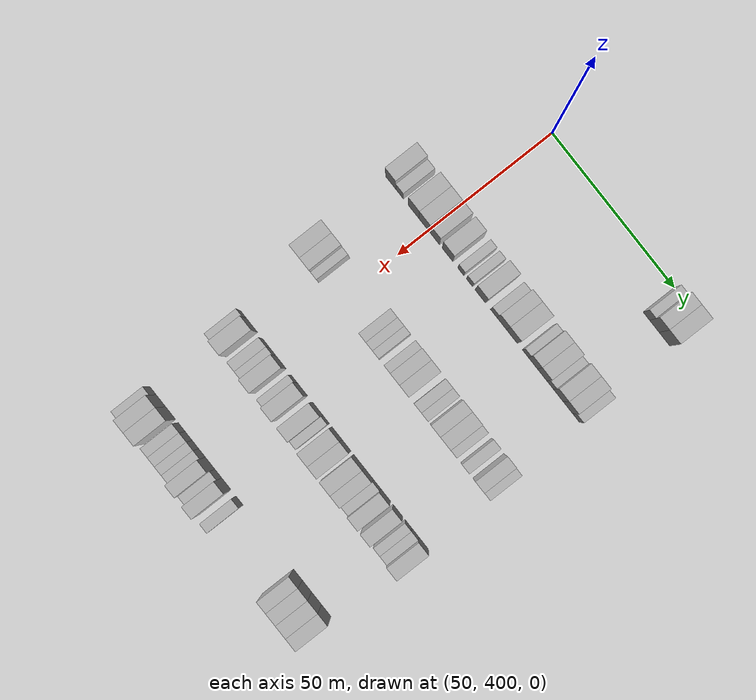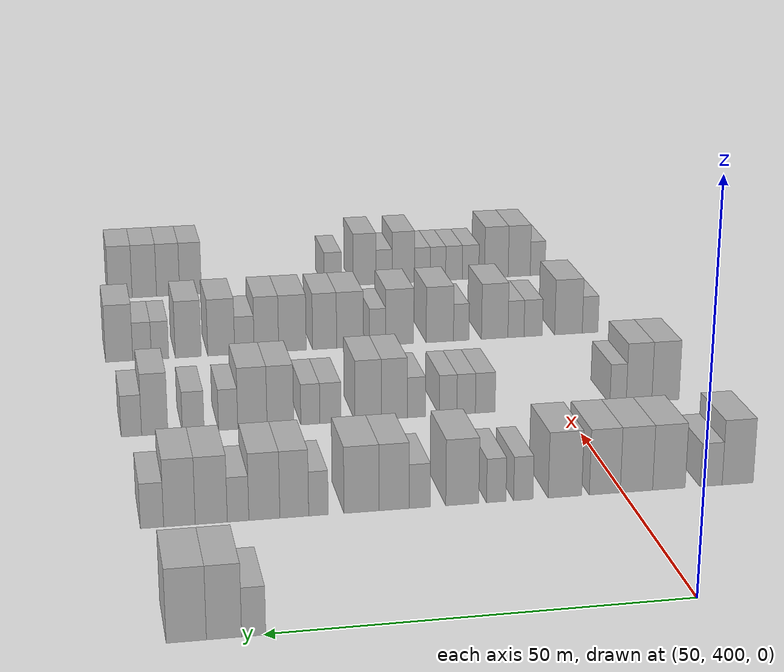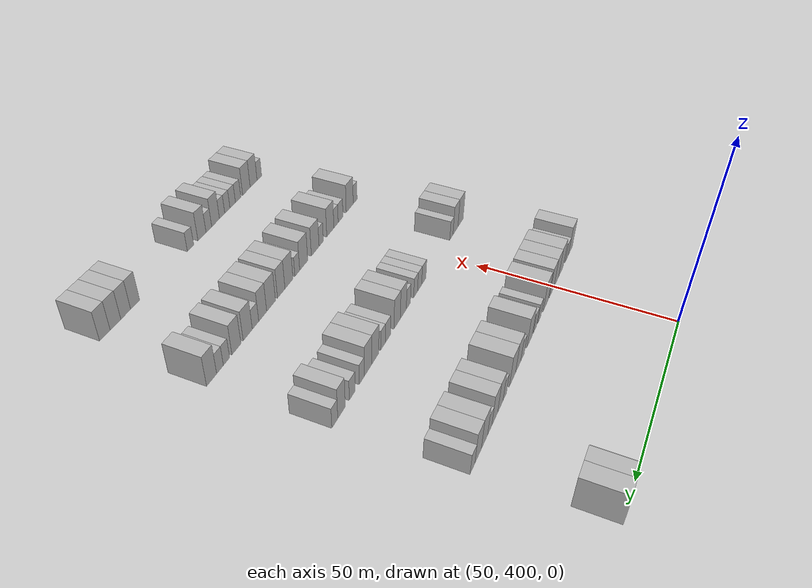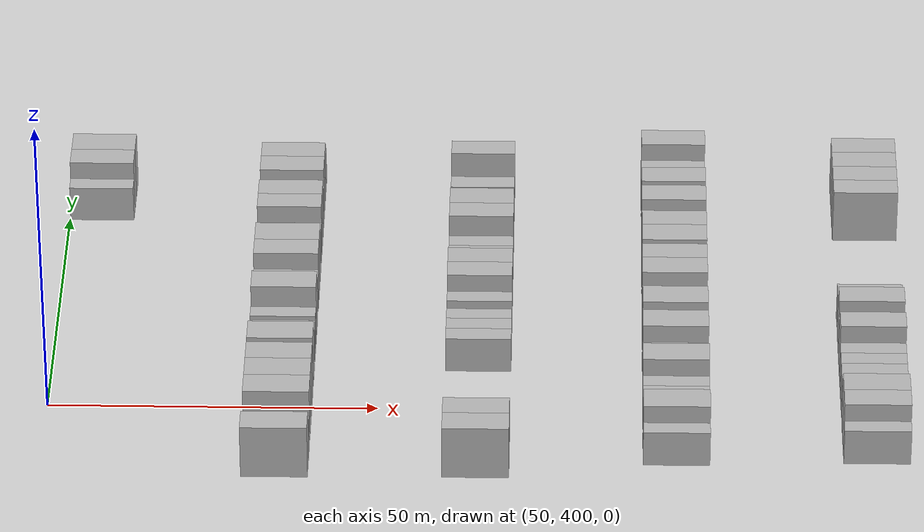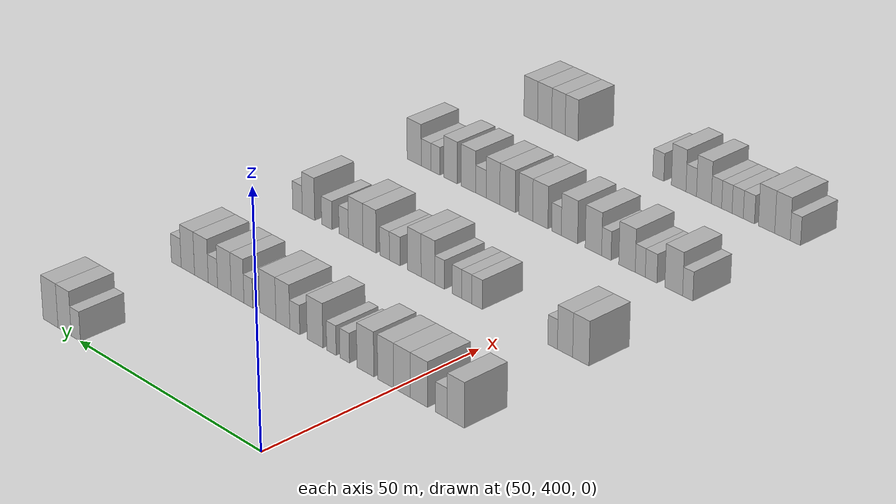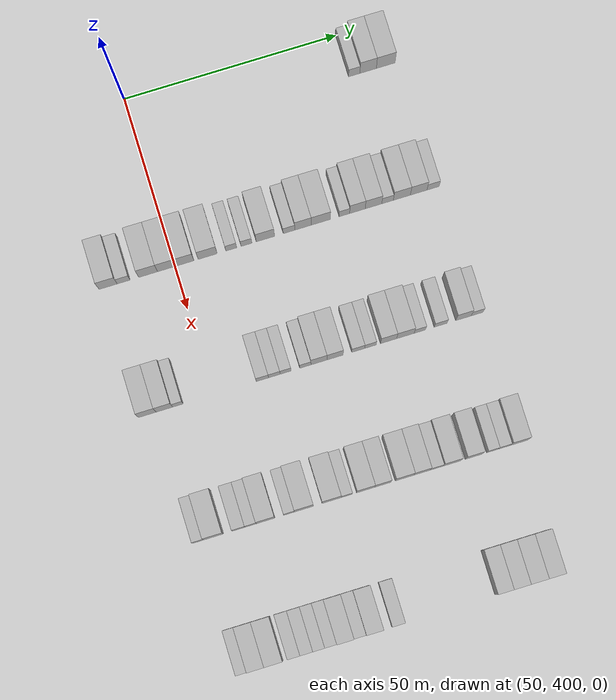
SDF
<sdf version="1.6">
 <world name="default">
  <model name="building_456">
   <static>1</static>
   <pose>55.0000 451.1384 0 0.000000 0.000000 0.000000</pose>
   <link name="link">
    <pose>0 0 3.00 0 0 0</pose>
    <collision name="collision"><geometry><box><size>10.0000 2.6718 6.0000</size></box></geometry></collision>
    <visual name="visual">
     <cast_shadows>0</cast_shadows>
     <geometry><box><size>10.0000 2.6718 6.0000</size></box></geometry>
     <material>
      <script>
       <uri>model://HANNAS_wall/materials/scripts</uri>
       <uri>model://HANNAS_wall/materials/textures</uri>
       <name>vrc/HANNAS_wall</name>
      </script>
     </material>
    </visual>
   </link>
  </model>
  <model name="building_457">
   <static>1</static>
   <pose>55.0000 454.4174 0 0.000000 0.000000 0.000000</pose>
   <link name="link">
    <pose>0 0 4.50 0 0 0</pose>
    <collision name="collision"><geometry><box><size>10.0000 3.8862 9.0000</size></box></geometry></collision>
    <visual name="visual">
     <cast_shadows>0</cast_shadows>
     <geometry><box><size>10.0000 3.8862 9.0000</size></box></geometry>
     <material>
      <script>
       <uri>model://HANNAS_wall/materials/scripts</uri>
       <uri>model://HANNAS_wall/materials/textures</uri>
       <name>vrc/HANNAS_wall</name>
      </script>
     </material>
    </visual>
   </link>
  </model>
  <model name="building_458">
   <static>1</static>
   <pose>55.0000 458.5703 0 0.000000 0.000000 0.000000</pose>
   <link name="link">
    <pose>0 0 4.50 0 0 0</pose>
    <collision name="collision"><geometry><box><size>10.0000 4.4196 9.0000</size></box></geometry></collision>
    <visual name="visual">
     <cast_shadows>0</cast_shadows>
     <geometry><box><size>10.0000 4.4196 9.0000</size></box></geometry>
     <material>
      <script>
       <uri>model://HANNAS_wall/materials/scripts</uri>
       <uri>model://HANNAS_wall/materials/textures</uri>
       <name>vrc/HANNAS_wall</name>
      </script>
     </material>
    </visual>
   </link>
  </model>
  <model name="building_674">
   <static>1</static>
   <pose>85.0000 384.5700 0 0.000000 0.000000 0.000000</pose>
   <link name="link">
    <pose>0 0 4.50 0 0 0</pose>
    <collision name="collision"><geometry><box><size>10.0000 4.2177 9.0000</size></box></geometry></collision>
    <visual name="visual">
     <cast_shadows>0</cast_shadows>
     <geometry><box><size>10.0000 4.2177 9.0000</size></box></geometry>
     <material>
      <script>
       <uri>model://HANNAS_wall/materials/scripts</uri>
       <uri>model://HANNAS_wall/materials/textures</uri>
       <name>vrc/HANNAS_wall</name>
      </script>
     </material>
    </visual>
   </link>
  </model>
  <model name="building_675">
   <static>1</static>
   <pose>85.0000 388.1701 0 0.000000 0.000000 0.000000</pose>
   <link name="link">
    <pose>0 0 3.00 0 0 0</pose>
    <collision name="collision"><geometry><box><size>10.0000 2.9825 6.0000</size></box></geometry></collision>
    <visual name="visual">
     <cast_shadows>0</cast_shadows>
     <geometry><box><size>10.0000 2.9825 6.0000</size></box></geometry>
     <material>
      <script>
       <uri>model://HANNAS_wall/materials/scripts</uri>
       <uri>model://HANNAS_wall/materials/textures</uri>
       <name>vrc/HANNAS_wall</name>
      </script>
     </material>
    </visual>
   </link>
  </model>
  <model name="building_676">
   <static>1</static>
   <pose>85.0000 393.8503 0 0.000000 0.000000 0.000000</pose>
   <link name="link">
    <pose>0 0 4.50 0 0 0</pose>
    <collision name="collision"><geometry><box><size>10.0000 4.3780 9.0000</size></box></geometry></collision>
    <visual name="visual">
     <cast_shadows>0</cast_shadows>
     <geometry><box><size>10.0000 4.3780 9.0000</size></box></geometry>
     <material>
      <script>
       <uri>model://HANNAS_wall/materials/scripts</uri>
       <uri>model://HANNAS_wall/materials/textures</uri>
       <name>vrc/HANNAS_wall</name>
      </script>
     </material>
    </visual>
   </link>
  </model>
  <model name="building_677">
   <static>1</static>
   <pose>85.0000 398.2000 0 0.000000 0.000000 0.000000</pose>
   <link name="link">
    <pose>0 0 4.50 0 0 0</pose>
    <collision name="collision"><geometry><box><size>10.0000 4.3214 9.0000</size></box></geometry></collision>
    <visual name="visual">
     <cast_shadows>0</cast_shadows>
     <geometry><box><size>10.0000 4.3214 9.0000</size></box></geometry>
     <material>
      <script>
       <uri>model://HANNAS_wall/materials/scripts</uri>
       <uri>model://HANNAS_wall/materials/textures</uri>
       <name>vrc/HANNAS_wall</name>
      </script>
     </material>
    </visual>
   </link>
  </model>
  <model name="building_678">
   <static>1</static>
   <pose>85.0000 402.4198 0 0.000000 0.000000 0.000000</pose>
   <link name="link">
    <pose>0 0 4.50 0 0 0</pose>
    <collision name="collision"><geometry><box><size>10.0000 4.1180 9.0000</size></box></geometry></collision>
    <visual name="visual">
     <cast_shadows>0</cast_shadows>
     <geometry><box><size>10.0000 4.1180 9.0000</size></box></geometry>
     <material>
      <script>
       <uri>model://HANNAS_wall/materials/scripts</uri>
       <uri>model://HANNAS_wall/materials/textures</uri>
       <name>vrc/HANNAS_wall</name>
      </script>
     </material>
    </visual>
   </link>
  </model>
  <model name="building_679">
   <static>1</static>
   <pose>85.0000 407.6911 0 0.000000 0.000000 0.000000</pose>
   <link name="link">
    <pose>0 0 4.50 0 0 0</pose>
    <collision name="collision"><geometry><box><size>10.0000 4.4246 9.0000</size></box></geometry></collision>
    <visual name="visual">
     <cast_shadows>0</cast_shadows>
     <geometry><box><size>10.0000 4.4246 9.0000</size></box></geometry>
     <material>
      <script>
       <uri>model://HANNAS_wall/materials/scripts</uri>
       <uri>model://HANNAS_wall/materials/textures</uri>
       <name>vrc/HANNAS_wall</name>
      </script>
     </material>
    </visual>
   </link>
  </model>
  <model name="building_680">
   <static>1</static>
   <pose>85.0000 413.1718 0 0.000000 0.000000 0.000000</pose>
   <link name="link">
    <pose>0 0 3.00 0 0 0</pose>
    <collision name="collision"><geometry><box><size>10.0000 2.5369 6.0000</size></box></geometry></collision>
    <visual name="visual">
     <cast_shadows>0</cast_shadows>
     <geometry><box><size>10.0000 2.5369 6.0000</size></box></geometry>
     <material>
      <script>
       <uri>model://HANNAS_wall/materials/scripts</uri>
       <uri>model://HANNAS_wall/materials/textures</uri>
       <name>vrc/HANNAS_wall</name>
      </script>
     </material>
    </visual>
   </link>
  </model>
  <model name="building_681">
   <static>1</static>
   <pose>85.0000 416.7112 0 0.000000 0.000000 0.000000</pose>
   <link name="link">
    <pose>0 0 3.00 0 0 0</pose>
    <collision name="collision"><geometry><box><size>10.0000 2.5418 6.0000</size></box></geometry></collision>
    <visual name="visual">
     <cast_shadows>0</cast_shadows>
     <geometry><box><size>10.0000 2.5418 6.0000</size></box></geometry>
     <material>
      <script>
       <uri>model://HANNAS_wall/materials/scripts</uri>
       <uri>model://HANNAS_wall/materials/textures</uri>
       <name>vrc/HANNAS_wall</name>
      </script>
     </material>
    </visual>
   </link>
  </model>
  <model name="building_682">
   <static>1</static>
   <pose>85.0000 421.1223 0 0.000000 0.000000 0.000000</pose>
   <link name="link">
    <pose>0 0 4.50 0 0 0</pose>
    <collision name="collision"><geometry><box><size>10.0000 4.2804 9.0000</size></box></geometry></collision>
    <visual name="visual">
     <cast_shadows>0</cast_shadows>
     <geometry><box><size>10.0000 4.2804 9.0000</size></box></geometry>
     <material>
      <script>
       <uri>model://HANNAS_wall/materials/scripts</uri>
       <uri>model://HANNAS_wall/materials/textures</uri>
       <name>vrc/HANNAS_wall</name>
      </script>
     </material>
    </visual>
   </link>
  </model>
  <model name="building_683">
   <static>1</static>
   <pose>85.0000 426.6259 0 0.000000 0.000000 0.000000</pose>
   <link name="link">
    <pose>0 0 3.00 0 0 0</pose>
    <collision name="collision"><geometry><box><size>10.0000 2.7268 6.0000</size></box></geometry></collision>
    <visual name="visual">
     <cast_shadows>0</cast_shadows>
     <geometry><box><size>10.0000 2.7268 6.0000</size></box></geometry>
     <material>
      <script>
       <uri>model://HANNAS_wall/materials/scripts</uri>
       <uri>model://HANNAS_wall/materials/textures</uri>
       <name>vrc/HANNAS_wall</name>
      </script>
     </material>
    </visual>
   </link>
  </model>
  <model name="building_684">
   <static>1</static>
   <pose>85.0000 429.9110 0 0.000000 0.000000 0.000000</pose>
   <link name="link">
    <pose>0 0 4.50 0 0 0</pose>
    <collision name="collision"><geometry><box><size>10.0000 3.8433 9.0000</size></box></geometry></collision>
    <visual name="visual">
     <cast_shadows>0</cast_shadows>
     <geometry><box><size>10.0000 3.8433 9.0000</size></box></geometry>
     <material>
      <script>
       <uri>model://HANNAS_wall/materials/scripts</uri>
       <uri>model://HANNAS_wall/materials/textures</uri>
       <name>vrc/HANNAS_wall</name>
      </script>
     </material>
    </visual>
   </link>
  </model>
  <model name="building_685">
   <static>1</static>
   <pose>85.0000 434.0690 0 0.000000 0.000000 0.000000</pose>
   <link name="link">
    <pose>0 0 4.50 0 0 0</pose>
    <collision name="collision"><geometry><box><size>10.0000 4.4727 9.0000</size></box></geometry></collision>
    <visual name="visual">
     <cast_shadows>0</cast_shadows>
     <geometry><box><size>10.0000 4.4727 9.0000</size></box></geometry>
     <material>
      <script>
       <uri>model://HANNAS_wall/materials/scripts</uri>
       <uri>model://HANNAS_wall/materials/textures</uri>
       <name>vrc/HANNAS_wall</name>
      </script>
     </material>
    </visual>
   </link>
  </model>
  <model name="building_686">
   <static>1</static>
   <pose>85.0000 439.5410 0 0.000000 0.000000 0.000000</pose>
   <link name="link">
    <pose>0 0 3.00 0 0 0</pose>
    <collision name="collision"><geometry><box><size>10.0000 2.4714 6.0000</size></box></geometry></collision>
    <visual name="visual">
     <cast_shadows>0</cast_shadows>
     <geometry><box><size>10.0000 2.4714 6.0000</size></box></geometry>
     <material>
      <script>
       <uri>model://HANNAS_wall/materials/scripts</uri>
       <uri>model://HANNAS_wall/materials/textures</uri>
       <name>vrc/HANNAS_wall</name>
      </script>
     </material>
    </visual>
   </link>
  </model>
  <model name="building_687">
   <static>1</static>
   <pose>85.0000 442.5926 0 0.000000 0.000000 0.000000</pose>
   <link name="link">
    <pose>0 0 4.50 0 0 0</pose>
    <collision name="collision"><geometry><box><size>10.0000 3.6317 9.0000</size></box></geometry></collision>
    <visual name="visual">
     <cast_shadows>0</cast_shadows>
     <geometry><box><size>10.0000 3.6317 9.0000</size></box></geometry>
     <material>
      <script>
       <uri>model://HANNAS_wall/materials/scripts</uri>
       <uri>model://HANNAS_wall/materials/textures</uri>
       <name>vrc/HANNAS_wall</name>
      </script>
     </material>
    </visual>
   </link>
  </model>
  <model name="building_688">
   <static>1</static>
   <pose>85.0000 446.3511 0 0.000000 0.000000 0.000000</pose>
   <link name="link">
    <pose>0 0 4.50 0 0 0</pose>
    <collision name="collision"><geometry><box><size>10.0000 3.8855 9.0000</size></box></geometry></collision>
    <visual name="visual">
     <cast_shadows>0</cast_shadows>
     <geometry><box><size>10.0000 3.8855 9.0000</size></box></geometry>
     <material>
      <script>
       <uri>model://HANNAS_wall/materials/scripts</uri>
       <uri>model://HANNAS_wall/materials/textures</uri>
       <name>vrc/HANNAS_wall</name>
      </script>
     </material>
    </visual>
   </link>
  </model>
  <model name="building_689">
   <static>1</static>
   <pose>85.0000 449.6389 0 0.000000 0.000000 0.000000</pose>
   <link name="link">
    <pose>0 0 3.00 0 0 0</pose>
    <collision name="collision"><geometry><box><size>10.0000 2.6900 6.0000</size></box></geometry></collision>
    <visual name="visual">
     <cast_shadows>0</cast_shadows>
     <geometry><box><size>10.0000 2.6900 6.0000</size></box></geometry>
     <material>
      <script>
       <uri>model://HANNAS_wall/materials/scripts</uri>
       <uri>model://HANNAS_wall/materials/textures</uri>
       <name>vrc/HANNAS_wall</name>
      </script>
     </material>
    </visual>
   </link>
  </model>
  <model name="building_690">
   <static>1</static>
   <pose>85.0000 452.9744 0 0.000000 0.000000 0.000000</pose>
   <link name="link">
    <pose>0 0 4.50 0 0 0</pose>
    <collision name="collision"><geometry><box><size>10.0000 3.9811 9.0000</size></box></geometry></collision>
    <visual name="visual">
     <cast_shadows>0</cast_shadows>
     <geometry><box><size>10.0000 3.9811 9.0000</size></box></geometry>
     <material>
      <script>
       <uri>model://HANNAS_wall/materials/scripts</uri>
       <uri>model://HANNAS_wall/materials/textures</uri>
       <name>vrc/HANNAS_wall</name>
      </script>
     </material>
    </visual>
   </link>
  </model>
  <model name="building_691">
   <static>1</static>
   <pose>85.0000 456.9182 0 0.000000 0.000000 0.000000</pose>
   <link name="link">
    <pose>0 0 4.50 0 0 0</pose>
    <collision name="collision"><geometry><box><size>10.0000 3.9064 9.0000</size></box></geometry></collision>
    <visual name="visual">
     <cast_shadows>0</cast_shadows>
     <geometry><box><size>10.0000 3.9064 9.0000</size></box></geometry>
     <material>
      <script>
       <uri>model://HANNAS_wall/materials/scripts</uri>
       <uri>model://HANNAS_wall/materials/textures</uri>
       <name>vrc/HANNAS_wall</name>
      </script>
     </material>
    </visual>
   </link>
  </model>
  <model name="building_692">
   <static>1</static>
   <pose>85.0000 460.3089 0 0.000000 0.000000 0.000000</pose>
   <link name="link">
    <pose>0 0 3.00 0 0 0</pose>
    <collision name="collision"><geometry><box><size>10.0000 2.8749 6.0000</size></box></geometry></collision>
    <visual name="visual">
     <cast_shadows>0</cast_shadows>
     <geometry><box><size>10.0000 2.8749 6.0000</size></box></geometry>
     <material>
      <script>
       <uri>model://HANNAS_wall/materials/scripts</uri>
       <uri>model://HANNAS_wall/materials/textures</uri>
       <name>vrc/HANNAS_wall</name>
      </script>
     </material>
    </visual>
   </link>
  </model>
  <model name="building_905">
   <static>1</static>
   <pose>115.0000 384.7824 0 0.000000 0.000000 0.000000</pose>
   <link name="link">
    <pose>0 0 4.50 0 0 0</pose>
    <collision name="collision"><geometry><box><size>10.0000 4.0681 9.0000</size></box></geometry></collision>
    <visual name="visual">
     <cast_shadows>0</cast_shadows>
     <geometry><box><size>10.0000 4.0681 9.0000</size></box></geometry>
     <material>
      <script>
       <uri>model://HANNAS_wall/materials/scripts</uri>
       <uri>model://HANNAS_wall/materials/textures</uri>
       <name>vrc/HANNAS_wall</name>
      </script>
     </material>
    </visual>
   </link>
  </model>
  <model name="building_906">
   <static>1</static>
   <pose>115.0000 388.7227 0 0.000000 0.000000 0.000000</pose>
   <link name="link">
    <pose>0 0 4.50 0 0 0</pose>
    <collision name="collision"><geometry><box><size>10.0000 3.8125 9.0000</size></box></geometry></collision>
    <visual name="visual">
     <cast_shadows>0</cast_shadows>
     <geometry><box><size>10.0000 3.8125 9.0000</size></box></geometry>
     <material>
      <script>
       <uri>model://HANNAS_wall/materials/scripts</uri>
       <uri>model://HANNAS_wall/materials/textures</uri>
       <name>vrc/HANNAS_wall</name>
      </script>
     </material>
    </visual>
   </link>
  </model>
  <model name="building_907">
   <static>1</static>
   <pose>115.0000 391.8357 0 0.000000 0.000000 0.000000</pose>
   <link name="link">
    <pose>0 0 3.00 0 0 0</pose>
    <collision name="collision"><geometry><box><size>10.0000 2.4135 6.0000</size></box></geometry></collision>
    <visual name="visual">
     <cast_shadows>0</cast_shadows>
     <geometry><box><size>10.0000 2.4135 6.0000</size></box></geometry>
     <material>
      <script>
       <uri>model://HANNAS_wall/materials/scripts</uri>
       <uri>model://HANNAS_wall/materials/textures</uri>
       <name>vrc/HANNAS_wall</name>
      </script>
     </material>
    </visual>
   </link>
  </model>
  <model name="building_908">
   <static>1</static>
   <pose>115.0000 411.3179 0 0.000000 0.000000 0.000000</pose>
   <link name="link">
    <pose>0 0 3.00 0 0 0</pose>
    <collision name="collision"><geometry><box><size>10.0000 2.8503 6.0000</size></box></geometry></collision>
    <visual name="visual">
     <cast_shadows>0</cast_shadows>
     <geometry><box><size>10.0000 2.8503 6.0000</size></box></geometry>
     <material>
      <script>
       <uri>model://HANNAS_wall/materials/scripts</uri>
       <uri>model://HANNAS_wall/materials/textures</uri>
       <name>vrc/HANNAS_wall</name>
      </script>
     </material>
    </visual>
   </link>
  </model>
  <model name="building_909">
   <static>1</static>
   <pose>115.0000 414.0802 0 0.000000 0.000000 0.000000</pose>
   <link name="link">
    <pose>0 0 3.00 0 0 0</pose>
    <collision name="collision"><geometry><box><size>10.0000 2.6743 6.0000</size></box></geometry></collision>
    <visual name="visual">
     <cast_shadows>0</cast_shadows>
     <geometry><box><size>10.0000 2.6743 6.0000</size></box></geometry>
     <material>
      <script>
       <uri>model://HANNAS_wall/materials/scripts</uri>
       <uri>model://HANNAS_wall/materials/textures</uri>
       <name>vrc/HANNAS_wall</name>
      </script>
     </material>
    </visual>
   </link>
  </model>
  <model name="building_910">
   <static>1</static>
   <pose>115.0000 416.6771 0 0.000000 0.000000 0.000000</pose>
   <link name="link">
    <pose>0 0 3.00 0 0 0</pose>
    <collision name="collision"><geometry><box><size>10.0000 2.5195 6.0000</size></box></geometry></collision>
    <visual name="visual">
     <cast_shadows>0</cast_shadows>
     <geometry><box><size>10.0000 2.5195 6.0000</size></box></geometry>
     <material>
      <script>
       <uri>model://HANNAS_wall/materials/scripts</uri>
       <uri>model://HANNAS_wall/materials/textures</uri>
       <name>vrc/HANNAS_wall</name>
      </script>
     </material>
    </visual>
   </link>
  </model>
  <model name="building_911">
   <static>1</static>
   <pose>115.0000 421.2433 0 0.000000 0.000000 0.000000</pose>
   <link name="link">
    <pose>0 0 3.00 0 0 0</pose>
    <collision name="collision"><geometry><box><size>10.0000 2.6130 6.0000</size></box></geometry></collision>
    <visual name="visual">
     <cast_shadows>0</cast_shadows>
     <geometry><box><size>10.0000 2.6130 6.0000</size></box></geometry>
     <material>
      <script>
       <uri>model://HANNAS_wall/materials/scripts</uri>
       <uri>model://HANNAS_wall/materials/textures</uri>
       <name>vrc/HANNAS_wall</name>
      </script>
     </material>
    </visual>
   </link>
  </model>
  <model name="building_912">
   <static>1</static>
   <pose>115.0000 424.3991 0 0.000000 0.000000 0.000000</pose>
   <link name="link">
    <pose>0 0 4.50 0 0 0</pose>
    <collision name="collision"><geometry><box><size>10.0000 3.6987 9.0000</size></box></geometry></collision>
    <visual name="visual">
     <cast_shadows>0</cast_shadows>
     <geometry><box><size>10.0000 3.6987 9.0000</size></box></geometry>
     <material>
      <script>
       <uri>model://HANNAS_wall/materials/scripts</uri>
       <uri>model://HANNAS_wall/materials/textures</uri>
       <name>vrc/HANNAS_wall</name>
      </script>
     </material>
    </visual>
   </link>
  </model>
  <model name="building_913">
   <static>1</static>
   <pose>115.0000 428.1123 0 0.000000 0.000000 0.000000</pose>
   <link name="link">
    <pose>0 0 4.50 0 0 0</pose>
    <collision name="collision"><geometry><box><size>10.0000 3.7276 9.0000</size></box></geometry></collision>
    <visual name="visual">
     <cast_shadows>0</cast_shadows>
     <geometry><box><size>10.0000 3.7276 9.0000</size></box></geometry>
     <material>
      <script>
       <uri>model://HANNAS_wall/materials/scripts</uri>
       <uri>model://HANNAS_wall/materials/textures</uri>
       <name>vrc/HANNAS_wall</name>
      </script>
     </material>
    </visual>
   </link>
  </model>
  <model name="building_914">
   <static>1</static>
   <pose>115.0000 433.4682 0 0.000000 0.000000 0.000000</pose>
   <link name="link">
    <pose>0 0 3.00 0 0 0</pose>
    <collision name="collision"><geometry><box><size>10.0000 2.9843 6.0000</size></box></geometry></collision>
    <visual name="visual">
     <cast_shadows>0</cast_shadows>
     <geometry><box><size>10.0000 2.9843 6.0000</size></box></geometry>
     <material>
      <script>
       <uri>model://HANNAS_wall/materials/scripts</uri>
       <uri>model://HANNAS_wall/materials/textures</uri>
       <name>vrc/HANNAS_wall</name>
      </script>
     </material>
    </visual>
   </link>
  </model>
  <model name="building_915">
   <static>1</static>
   <pose>115.0000 436.2966 0 0.000000 0.000000 0.000000</pose>
   <link name="link">
    <pose>0 0 3.00 0 0 0</pose>
    <collision name="collision"><geometry><box><size>10.0000 2.6725 6.0000</size></box></geometry></collision>
    <visual name="visual">
     <cast_shadows>0</cast_shadows>
     <geometry><box><size>10.0000 2.6725 6.0000</size></box></geometry>
     <material>
      <script>
       <uri>model://HANNAS_wall/materials/scripts</uri>
       <uri>model://HANNAS_wall/materials/textures</uri>
       <name>vrc/HANNAS_wall</name>
      </script>
     </material>
    </visual>
   </link>
  </model>
  <model name="building_916">
   <static>1</static>
   <pose>115.0000 440.4993 0 0.000000 0.000000 0.000000</pose>
   <link name="link">
    <pose>0 0 4.50 0 0 0</pose>
    <collision name="collision"><geometry><box><size>10.0000 3.7330 9.0000</size></box></geometry></collision>
    <visual name="visual">
     <cast_shadows>0</cast_shadows>
     <geometry><box><size>10.0000 3.7330 9.0000</size></box></geometry>
     <material>
      <script>
       <uri>model://HANNAS_wall/materials/scripts</uri>
       <uri>model://HANNAS_wall/materials/textures</uri>
       <name>vrc/HANNAS_wall</name>
      </script>
     </material>
    </visual>
   </link>
  </model>
  <model name="building_917">
   <static>1</static>
   <pose>115.0000 444.4056 0 0.000000 0.000000 0.000000</pose>
   <link name="link">
    <pose>0 0 4.50 0 0 0</pose>
    <collision name="collision"><geometry><box><size>10.0000 4.0796 9.0000</size></box></geometry></collision>
    <visual name="visual">
     <cast_shadows>0</cast_shadows>
     <geometry><box><size>10.0000 4.0796 9.0000</size></box></geometry>
     <material>
      <script>
       <uri>model://HANNAS_wall/materials/scripts</uri>
       <uri>model://HANNAS_wall/materials/textures</uri>
       <name>vrc/HANNAS_wall</name>
      </script>
     </material>
    </visual>
   </link>
  </model>
  <model name="building_918">
   <static>1</static>
   <pose>115.0000 447.7815 0 0.000000 0.000000 0.000000</pose>
   <link name="link">
    <pose>0 0 3.00 0 0 0</pose>
    <collision name="collision"><geometry><box><size>10.0000 2.6723 6.0000</size></box></geometry></collision>
    <visual name="visual">
     <cast_shadows>0</cast_shadows>
     <geometry><box><size>10.0000 2.6723 6.0000</size></box></geometry>
     <material>
      <script>
       <uri>model://HANNAS_wall/materials/scripts</uri>
       <uri>model://HANNAS_wall/materials/textures</uri>
       <name>vrc/HANNAS_wall</name>
      </script>
     </material>
    </visual>
   </link>
  </model>
  <model name="building_919">
   <static>1</static>
   <pose>115.0000 452.6151 0 0.000000 0.000000 0.000000</pose>
   <link name="link">
    <pose>0 0 3.00 0 0 0</pose>
    <collision name="collision"><geometry><box><size>10.0000 2.9948 6.0000</size></box></geometry></collision>
    <visual name="visual">
     <cast_shadows>0</cast_shadows>
     <geometry><box><size>10.0000 2.9948 6.0000</size></box></geometry>
     <material>
      <script>
       <uri>model://HANNAS_wall/materials/scripts</uri>
       <uri>model://HANNAS_wall/materials/textures</uri>
       <name>vrc/HANNAS_wall</name>
      </script>
     </material>
    </visual>
   </link>
  </model>
  <model name="building_920">
   <static>1</static>
   <pose>115.0000 457.9167 0 0.000000 0.000000 0.000000</pose>
   <link name="link">
    <pose>0 0 4.50 0 0 0</pose>
    <collision name="collision"><geometry><box><size>10.0000 3.6084 9.0000</size></box></geometry></collision>
    <visual name="visual">
     <cast_shadows>0</cast_shadows>
     <geometry><box><size>10.0000 3.6084 9.0000</size></box></geometry>
     <material>
      <script>
       <uri>model://HANNAS_wall/materials/scripts</uri>
       <uri>model://HANNAS_wall/materials/textures</uri>
       <name>vrc/HANNAS_wall</name>
      </script>
     </material>
    </visual>
   </link>
  </model>
  <model name="building_921">
   <static>1</static>
   <pose>115.0000 461.1172 0 0.000000 0.000000 0.000000</pose>
   <link name="link">
    <pose>0 0 3.00 0 0 0</pose>
    <collision name="collision"><geometry><box><size>10.0000 2.7925 6.0000</size></box></geometry></collision>
    <visual name="visual">
     <cast_shadows>0</cast_shadows>
     <geometry><box><size>10.0000 2.7925 6.0000</size></box></geometry>
     <material>
      <script>
       <uri>model://HANNAS_wall/materials/scripts</uri>
       <uri>model://HANNAS_wall/materials/textures</uri>
       <name>vrc/HANNAS_wall</name>
      </script>
     </material>
    </visual>
   </link>
  </model>
  <model name="building_1125">
   <static>1</static>
   <pose>145.0000 387.5832 0 0.000000 0.000000 0.000000</pose>
   <link name="link">
    <pose>0 0 3.00 0 0 0</pose>
    <collision name="collision"><geometry><box><size>10.0000 2.5519 6.0000</size></box></geometry></collision>
    <visual name="visual">
     <cast_shadows>0</cast_shadows>
     <geometry><box><size>10.0000 2.5519 6.0000</size></box></geometry>
     <material>
      <script>
       <uri>model://HANNAS_wall/materials/scripts</uri>
       <uri>model://HANNAS_wall/materials/textures</uri>
       <name>vrc/HANNAS_wall</name>
      </script>
     </material>
    </visual>
   </link>
  </model>
  <model name="building_1126">
   <static>1</static>
   <pose>145.0000 391.0941 0 0.000000 0.000000 0.000000</pose>
   <link name="link">
    <pose>0 0 4.50 0 0 0</pose>
    <collision name="collision"><geometry><box><size>10.0000 4.4700 9.0000</size></box></geometry></collision>
    <visual name="visual">
     <cast_shadows>0</cast_shadows>
     <geometry><box><size>10.0000 4.4700 9.0000</size></box></geometry>
     <material>
      <script>
       <uri>model://HANNAS_wall/materials/scripts</uri>
       <uri>model://HANNAS_wall/materials/textures</uri>
       <name>vrc/HANNAS_wall</name>
      </script>
     </material>
    </visual>
   </link>
  </model>
  <model name="building_1127">
   <static>1</static>
   <pose>145.0000 396.8059 0 0.000000 0.000000 0.000000</pose>
   <link name="link">
    <pose>0 0 3.00 0 0 0</pose>
    <collision name="collision"><geometry><box><size>10.0000 2.9535 6.0000</size></box></geometry></collision>
    <visual name="visual">
     <cast_shadows>0</cast_shadows>
     <geometry><box><size>10.0000 2.9535 6.0000</size></box></geometry>
     <material>
      <script>
       <uri>model://HANNAS_wall/materials/scripts</uri>
       <uri>model://HANNAS_wall/materials/textures</uri>
       <name>vrc/HANNAS_wall</name>
      </script>
     </material>
    </visual>
   </link>
  </model>
  <model name="building_1128">
   <static>1</static>
   <pose>145.0000 399.5713 0 0.000000 0.000000 0.000000</pose>
   <link name="link">
    <pose>0 0 3.00 0 0 0</pose>
    <collision name="collision"><geometry><box><size>10.0000 2.5774 6.0000</size></box></geometry></collision>
    <visual name="visual">
     <cast_shadows>0</cast_shadows>
     <geometry><box><size>10.0000 2.5774 6.0000</size></box></geometry>
     <material>
      <script>
       <uri>model://HANNAS_wall/materials/scripts</uri>
       <uri>model://HANNAS_wall/materials/textures</uri>
       <name>vrc/HANNAS_wall</name>
      </script>
     </material>
    </visual>
   </link>
  </model>
  <model name="building_1129">
   <static>1</static>
   <pose>145.0000 402.9783 0 0.000000 0.000000 0.000000</pose>
   <link name="link">
    <pose>0 0 4.50 0 0 0</pose>
    <collision name="collision"><geometry><box><size>10.0000 4.2365 9.0000</size></box></geometry></collision>
    <visual name="visual">
     <cast_shadows>0</cast_shadows>
     <geometry><box><size>10.0000 4.2365 9.0000</size></box></geometry>
     <material>
      <script>
       <uri>model://HANNAS_wall/materials/scripts</uri>
       <uri>model://HANNAS_wall/materials/textures</uri>
       <name>vrc/HANNAS_wall</name>
      </script>
     </material>
    </visual>
   </link>
  </model>
  <model name="building_1130">
   <static>1</static>
   <pose>145.0000 408.3260 0 0.000000 0.000000 0.000000</pose>
   <link name="link">
    <pose>0 0 3.00 0 0 0</pose>
    <collision name="collision"><geometry><box><size>10.0000 2.4589 6.0000</size></box></geometry></collision>
    <visual name="visual">
     <cast_shadows>0</cast_shadows>
     <geometry><box><size>10.0000 2.4589 6.0000</size></box></geometry>
     <material>
      <script>
       <uri>model://HANNAS_wall/materials/scripts</uri>
       <uri>model://HANNAS_wall/materials/textures</uri>
       <name>vrc/HANNAS_wall</name>
      </script>
     </material>
    </visual>
   </link>
  </model>
  <model name="building_1131">
   <static>1</static>
   <pose>145.0000 411.7170 0 0.000000 0.000000 0.000000</pose>
   <link name="link">
    <pose>0 0 4.50 0 0 0</pose>
    <collision name="collision"><geometry><box><size>10.0000 4.3231 9.0000</size></box></geometry></collision>
    <visual name="visual">
     <cast_shadows>0</cast_shadows>
     <geometry><box><size>10.0000 4.3231 9.0000</size></box></geometry>
     <material>
      <script>
       <uri>model://HANNAS_wall/materials/scripts</uri>
       <uri>model://HANNAS_wall/materials/textures</uri>
       <name>vrc/HANNAS_wall</name>
      </script>
     </material>
    </visual>
   </link>
  </model>
  <model name="building_1132">
   <static>1</static>
   <pose>145.0000 418.0543 0 0.000000 0.000000 0.000000</pose>
   <link name="link">
    <pose>0 0 4.50 0 0 0</pose>
    <collision name="collision"><geometry><box><size>10.0000 4.3515 9.0000</size></box></geometry></collision>
    <visual name="visual">
     <cast_shadows>0</cast_shadows>
     <geometry><box><size>10.0000 4.3515 9.0000</size></box></geometry>
     <material>
      <script>
       <uri>model://HANNAS_wall/materials/scripts</uri>
       <uri>model://HANNAS_wall/materials/textures</uri>
       <name>vrc/HANNAS_wall</name>
      </script>
     </material>
    </visual>
   </link>
  </model>
  <model name="building_1133">
   <static>1</static>
   <pose>145.0000 421.5122 0 0.000000 0.000000 0.000000</pose>
   <link name="link">
    <pose>0 0 3.00 0 0 0</pose>
    <collision name="collision"><geometry><box><size>10.0000 2.5642 6.0000</size></box></geometry></collision>
    <visual name="visual">
     <cast_shadows>0</cast_shadows>
     <geometry><box><size>10.0000 2.5642 6.0000</size></box></geometry>
     <material>
      <script>
       <uri>model://HANNAS_wall/materials/scripts</uri>
       <uri>model://HANNAS_wall/materials/textures</uri>
       <name>vrc/HANNAS_wall</name>
      </script>
     </material>
    </visual>
   </link>
  </model>
  <model name="building_1134">
   <static>1</static>
   <pose>145.0000 425.8692 0 0.000000 0.000000 0.000000</pose>
   <link name="link">
    <pose>0 0 4.50 0 0 0</pose>
    <collision name="collision"><geometry><box><size>10.0000 4.1498 9.0000</size></box></geometry></collision>
    <visual name="visual">
     <cast_shadows>0</cast_shadows>
     <geometry><box><size>10.0000 4.1498 9.0000</size></box></geometry>
     <material>
      <script>
       <uri>model://HANNAS_wall/materials/scripts</uri>
       <uri>model://HANNAS_wall/materials/textures</uri>
       <name>vrc/HANNAS_wall</name>
      </script>
     </material>
    </visual>
   </link>
  </model>
  <model name="building_1135">
   <static>1</static>
   <pose>145.0000 429.8081 0 0.000000 0.000000 0.000000</pose>
   <link name="link">
    <pose>0 0 4.50 0 0 0</pose>
    <collision name="collision"><geometry><box><size>10.0000 3.7280 9.0000</size></box></geometry></collision>
    <visual name="visual">
     <cast_shadows>0</cast_shadows>
     <geometry><box><size>10.0000 3.7280 9.0000</size></box></geometry>
     <material>
      <script>
       <uri>model://HANNAS_wall/materials/scripts</uri>
       <uri>model://HANNAS_wall/materials/textures</uri>
       <name>vrc/HANNAS_wall</name>
      </script>
     </material>
    </visual>
   </link>
  </model>
  <model name="building_1136">
   <static>1</static>
   <pose>145.0000 434.8027 0 0.000000 0.000000 0.000000</pose>
   <link name="link">
    <pose>0 0 4.50 0 0 0</pose>
    <collision name="collision"><geometry><box><size>10.0000 4.2611 9.0000</size></box></geometry></collision>
    <visual name="visual">
     <cast_shadows>0</cast_shadows>
     <geometry><box><size>10.0000 4.2611 9.0000</size></box></geometry>
     <material>
      <script>
       <uri>model://HANNAS_wall/materials/scripts</uri>
       <uri>model://HANNAS_wall/materials/textures</uri>
       <name>vrc/HANNAS_wall</name>
      </script>
     </material>
    </visual>
   </link>
  </model>
  <model name="building_1137">
   <static>1</static>
   <pose>145.0000 438.8183 0 0.000000 0.000000 0.000000</pose>
   <link name="link">
    <pose>0 0 4.50 0 0 0</pose>
    <collision name="collision"><geometry><box><size>10.0000 3.7701 9.0000</size></box></geometry></collision>
    <visual name="visual">
     <cast_shadows>0</cast_shadows>
     <geometry><box><size>10.0000 3.7701 9.0000</size></box></geometry>
     <material>
      <script>
       <uri>model://HANNAS_wall/materials/scripts</uri>
       <uri>model://HANNAS_wall/materials/textures</uri>
       <name>vrc/HANNAS_wall</name>
      </script>
     </material>
    </visual>
   </link>
  </model>
  <model name="building_1138">
   <static>1</static>
   <pose>145.0000 442.1986 0 0.000000 0.000000 0.000000</pose>
   <link name="link">
    <pose>0 0 3.00 0 0 0</pose>
    <collision name="collision"><geometry><box><size>10.0000 2.9905 6.0000</size></box></geometry></collision>
    <visual name="visual">
     <cast_shadows>0</cast_shadows>
     <geometry><box><size>10.0000 2.9905 6.0000</size></box></geometry>
     <material>
      <script>
       <uri>model://HANNAS_wall/materials/scripts</uri>
       <uri>model://HANNAS_wall/materials/textures</uri>
       <name>vrc/HANNAS_wall</name>
      </script>
     </material>
    </visual>
   </link>
  </model>
  <model name="building_1139">
   <static>1</static>
   <pose>145.0000 445.7541 0 0.000000 0.000000 0.000000</pose>
   <link name="link">
    <pose>0 0 4.50 0 0 0</pose>
    <collision name="collision"><geometry><box><size>10.0000 4.1206 9.0000</size></box></geometry></collision>
    <visual name="visual">
     <cast_shadows>0</cast_shadows>
     <geometry><box><size>10.0000 4.1206 9.0000</size></box></geometry>
     <material>
      <script>
       <uri>model://HANNAS_wall/materials/scripts</uri>
       <uri>model://HANNAS_wall/materials/textures</uri>
       <name>vrc/HANNAS_wall</name>
      </script>
     </material>
    </visual>
   </link>
  </model>
  <model name="building_1140">
   <static>1</static>
   <pose>145.0000 450.7831 0 0.000000 0.000000 0.000000</pose>
   <link name="link">
    <pose>0 0 4.50 0 0 0</pose>
    <collision name="collision"><geometry><box><size>10.0000 3.9375 9.0000</size></box></geometry></collision>
    <visual name="visual">
     <cast_shadows>0</cast_shadows>
     <geometry><box><size>10.0000 3.9375 9.0000</size></box></geometry>
     <material>
      <script>
       <uri>model://HANNAS_wall/materials/scripts</uri>
       <uri>model://HANNAS_wall/materials/textures</uri>
       <name>vrc/HANNAS_wall</name>
      </script>
     </material>
    </visual>
   </link>
  </model>
  <model name="building_1141">
   <static>1</static>
   <pose>145.0000 455.0644 0 0.000000 0.000000 0.000000</pose>
   <link name="link">
    <pose>0 0 3.00 0 0 0</pose>
    <collision name="collision"><geometry><box><size>10.0000 2.6252 6.0000</size></box></geometry></collision>
    <visual name="visual">
     <cast_shadows>0</cast_shadows>
     <geometry><box><size>10.0000 2.6252 6.0000</size></box></geometry>
     <material>
      <script>
       <uri>model://HANNAS_wall/materials/scripts</uri>
       <uri>model://HANNAS_wall/materials/textures</uri>
       <name>vrc/HANNAS_wall</name>
      </script>
     </material>
    </visual>
   </link>
  </model>
  <model name="building_1142">
   <static>1</static>
   <pose>145.0000 457.7778 0 0.000000 0.000000 0.000000</pose>
   <link name="link">
    <pose>0 0 3.00 0 0 0</pose>
    <collision name="collision"><geometry><box><size>10.0000 2.8016 6.0000</size></box></geometry></collision>
    <visual name="visual">
     <cast_shadows>0</cast_shadows>
     <geometry><box><size>10.0000 2.8016 6.0000</size></box></geometry>
     <material>
      <script>
       <uri>model://HANNAS_wall/materials/scripts</uri>
       <uri>model://HANNAS_wall/materials/textures</uri>
       <name>vrc/HANNAS_wall</name>
      </script>
     </material>
    </visual>
   </link>
  </model>
  <model name="building_1143">
   <static>1</static>
   <pose>145.0000 461.2250 0 0.000000 0.000000 0.000000</pose>
   <link name="link">
    <pose>0 0 4.50 0 0 0</pose>
    <collision name="collision"><geometry><box><size>10.0000 4.0928 9.0000</size></box></geometry></collision>
    <visual name="visual">
     <cast_shadows>0</cast_shadows>
     <geometry><box><size>10.0000 4.0928 9.0000</size></box></geometry>
     <material>
      <script>
       <uri>model://HANNAS_wall/materials/scripts</uri>
       <uri>model://HANNAS_wall/materials/textures</uri>
       <name>vrc/HANNAS_wall</name>
      </script>
     </material>
    </visual>
   </link>
  </model>
  <model name="building_1358">
   <static>1</static>
   <pose>175.0000 388.4781 0 0.000000 0.000000 0.000000</pose>
   <link name="link">
    <pose>0 0 3.00 0 0 0</pose>
    <collision name="collision"><geometry><box><size>10.0000 2.6022 6.0000</size></box></geometry></collision>
    <visual name="visual">
     <cast_shadows>0</cast_shadows>
     <geometry><box><size>10.0000 2.6022 6.0000</size></box></geometry>
     <material>
      <script>
       <uri>model://HANNAS_wall/materials/scripts</uri>
       <uri>model://HANNAS_wall/materials/textures</uri>
       <name>vrc/HANNAS_wall</name>
      </script>
     </material>
    </visual>
   </link>
  </model>
  <model name="building_1359">
   <static>1</static>
   <pose>175.0000 391.7194 0 0.000000 0.000000 0.000000</pose>
   <link name="link">
    <pose>0 0 4.50 0 0 0</pose>
    <collision name="collision"><geometry><box><size>10.0000 3.8803 9.0000</size></box></geometry></collision>
    <visual name="visual">
     <cast_shadows>0</cast_shadows>
     <geometry><box><size>10.0000 3.8803 9.0000</size></box></geometry>
     <material>
      <script>
       <uri>model://HANNAS_wall/materials/scripts</uri>
       <uri>model://HANNAS_wall/materials/textures</uri>
       <name>vrc/HANNAS_wall</name>
      </script>
     </material>
    </visual>
   </link>
  </model>
  <model name="building_1360">
   <static>1</static>
   <pose>175.0000 395.7289 0 0.000000 0.000000 0.000000</pose>
   <link name="link">
    <pose>0 0 4.50 0 0 0</pose>
    <collision name="collision"><geometry><box><size>10.0000 4.1387 9.0000</size></box></geometry></collision>
    <visual name="visual">
     <cast_shadows>0</cast_shadows>
     <geometry><box><size>10.0000 4.1387 9.0000</size></box></geometry>
     <material>
      <script>
       <uri>model://HANNAS_wall/materials/scripts</uri>
       <uri>model://HANNAS_wall/materials/textures</uri>
       <name>vrc/HANNAS_wall</name>
      </script>
     </material>
    </visual>
   </link>
  </model>
  <model name="building_1361">
   <static>1</static>
   <pose>175.0000 400.2339 0 0.000000 0.000000 0.000000</pose>
   <link name="link">
    <pose>0 0 3.00 0 0 0</pose>
    <collision name="collision"><geometry><box><size>10.0000 2.8713 6.0000</size></box></geometry></collision>
    <visual name="visual">
     <cast_shadows>0</cast_shadows>
     <geometry><box><size>10.0000 2.8713 6.0000</size></box></geometry>
     <material>
      <script>
       <uri>model://HANNAS_wall/materials/scripts</uri>
       <uri>model://HANNAS_wall/materials/textures</uri>
       <name>vrc/HANNAS_wall</name>
      </script>
     </material>
    </visual>
   </link>
  </model>
  <model name="building_1362">
   <static>1</static>
   <pose>175.0000 403.1156 0 0.000000 0.000000 0.000000</pose>
   <link name="link">
    <pose>0 0 3.00 0 0 0</pose>
    <collision name="collision"><geometry><box><size>10.0000 2.8921 6.0000</size></box></geometry></collision>
    <visual name="visual">
     <cast_shadows>0</cast_shadows>
     <geometry><box><size>10.0000 2.8921 6.0000</size></box></geometry>
     <material>
      <script>
       <uri>model://HANNAS_wall/materials/scripts</uri>
       <uri>model://HANNAS_wall/materials/textures</uri>
       <name>vrc/HANNAS_wall</name>
      </script>
     </material>
    </visual>
   </link>
  </model>
  <model name="building_1363">
   <static>1</static>
   <pose>175.0000 405.9060 0 0.000000 0.000000 0.000000</pose>
   <link name="link">
    <pose>0 0 3.00 0 0 0</pose>
    <collision name="collision"><geometry><box><size>10.0000 2.6887 6.0000</size></box></geometry></collision>
    <visual name="visual">
     <cast_shadows>0</cast_shadows>
     <geometry><box><size>10.0000 2.6887 6.0000</size></box></geometry>
     <material>
      <script>
       <uri>model://HANNAS_wall/materials/scripts</uri>
       <uri>model://HANNAS_wall/materials/textures</uri>
       <name>vrc/HANNAS_wall</name>
      </script>
     </material>
    </visual>
   </link>
  </model>
  <model name="building_1364">
   <static>1</static>
   <pose>175.0000 408.5932 0 0.000000 0.000000 0.000000</pose>
   <link name="link">
    <pose>0 0 3.00 0 0 0</pose>
    <collision name="collision"><geometry><box><size>10.0000 2.6858 6.0000</size></box></geometry></collision>
    <visual name="visual">
     <cast_shadows>0</cast_shadows>
     <geometry><box><size>10.0000 2.6858 6.0000</size></box></geometry>
     <material>
      <script>
       <uri>model://HANNAS_wall/materials/scripts</uri>
       <uri>model://HANNAS_wall/materials/textures</uri>
       <name>vrc/HANNAS_wall</name>
      </script>
     </material>
    </visual>
   </link>
  </model>
  <model name="building_1365">
   <static>1</static>
   <pose>175.0000 411.8785 0 0.000000 0.000000 0.000000</pose>
   <link name="link">
    <pose>0 0 4.50 0 0 0</pose>
    <collision name="collision"><geometry><box><size>10.0000 3.8847 9.0000</size></box></geometry></collision>
    <visual name="visual">
     <cast_shadows>0</cast_shadows>
     <geometry><box><size>10.0000 3.8847 9.0000</size></box></geometry>
     <material>
      <script>
       <uri>model://HANNAS_wall/materials/scripts</uri>
       <uri>model://HANNAS_wall/materials/textures</uri>
       <name>vrc/HANNAS_wall</name>
      </script>
     </material>
    </visual>
   </link>
  </model>
  <model name="building_1366">
   <static>1</static>
   <pose>175.0000 415.2100 0 0.000000 0.000000 0.000000</pose>
   <link name="link">
    <pose>0 0 3.00 0 0 0</pose>
    <collision name="collision"><geometry><box><size>10.0000 2.7783 6.0000</size></box></geometry></collision>
    <visual name="visual">
     <cast_shadows>0</cast_shadows>
     <geometry><box><size>10.0000 2.7783 6.0000</size></box></geometry>
     <material>
      <script>
       <uri>model://HANNAS_wall/materials/scripts</uri>
       <uri>model://HANNAS_wall/materials/textures</uri>
       <name>vrc/HANNAS_wall</name>
      </script>
     </material>
    </visual>
   </link>
  </model>
  <model name="building_1367">
   <static>1</static>
   <pose>175.0000 418.5397 0 0.000000 0.000000 0.000000</pose>
   <link name="link">
    <pose>0 0 4.50 0 0 0</pose>
    <collision name="collision"><geometry><box><size>10.0000 3.8813 9.0000</size></box></geometry></collision>
    <visual name="visual">
     <cast_shadows>0</cast_shadows>
     <geometry><box><size>10.0000 3.8813 9.0000</size></box></geometry>
     <material>
      <script>
       <uri>model://HANNAS_wall/materials/scripts</uri>
       <uri>model://HANNAS_wall/materials/textures</uri>
       <name>vrc/HANNAS_wall</name>
      </script>
     </material>
    </visual>
   </link>
  </model>
  <model name="building_1368">
   <static>1</static>
   <pose>175.0000 423.9642 0 0.000000 0.000000 0.000000</pose>
   <link name="link">
    <pose>0 0 3.00 0 0 0</pose>
    <collision name="collision"><geometry><box><size>10.0000 2.9676 6.0000</size></box></geometry></collision>
    <visual name="visual">
     <cast_shadows>0</cast_shadows>
     <geometry><box><size>10.0000 2.9676 6.0000</size></box></geometry>
     <material>
      <script>
       <uri>model://HANNAS_wall/materials/scripts</uri>
       <uri>model://HANNAS_wall/materials/textures</uri>
       <name>vrc/HANNAS_wall</name>
      </script>
     </material>
    </visual>
   </link>
  </model>
  <model name="building_1369">
   <static>1</static>
   <pose>175.0000 447.8774 0 0.000000 0.000000 0.000000</pose>
   <link name="link">
    <pose>0 0 4.50 0 0 0</pose>
    <collision name="collision"><geometry><box><size>10.0000 3.6196 9.0000</size></box></geometry></collision>
    <visual name="visual">
     <cast_shadows>0</cast_shadows>
     <geometry><box><size>10.0000 3.6196 9.0000</size></box></geometry>
     <material>
      <script>
       <uri>model://HANNAS_wall/materials/scripts</uri>
       <uri>model://HANNAS_wall/materials/textures</uri>
       <name>vrc/HANNAS_wall</name>
      </script>
     </material>
    </visual>
   </link>
  </model>
  <model name="building_1370">
   <static>1</static>
   <pose>175.0000 451.5984 0 0.000000 0.000000 0.000000</pose>
   <link name="link">
    <pose>0 0 4.50 0 0 0</pose>
    <collision name="collision"><geometry><box><size>10.0000 3.8224 9.0000</size></box></geometry></collision>
    <visual name="visual">
     <cast_shadows>0</cast_shadows>
     <geometry><box><size>10.0000 3.8224 9.0000</size></box></geometry>
     <material>
      <script>
       <uri>model://HANNAS_wall/materials/scripts</uri>
       <uri>model://HANNAS_wall/materials/textures</uri>
       <name>vrc/HANNAS_wall</name>
      </script>
     </material>
    </visual>
   </link>
  </model>
  <model name="building_1371">
   <static>1</static>
   <pose>175.0000 455.5246 0 0.000000 0.000000 0.000000</pose>
   <link name="link">
    <pose>0 0 4.50 0 0 0</pose>
    <collision name="collision"><geometry><box><size>10.0000 4.0301 9.0000</size></box></geometry></collision>
    <visual name="visual">
     <cast_shadows>0</cast_shadows>
     <geometry><box><size>10.0000 4.0301 9.0000</size></box></geometry>
     <material>
      <script>
       <uri>model://HANNAS_wall/materials/scripts</uri>
       <uri>model://HANNAS_wall/materials/textures</uri>
       <name>vrc/HANNAS_wall</name>
      </script>
     </material>
    </visual>
   </link>
  </model>
  <model name="building_1372">
   <static>1</static>
   <pose>175.0000 459.5026 0 0.000000 0.000000 0.000000</pose>
   <link name="link">
    <pose>0 0 4.50 0 0 0</pose>
    <collision name="collision"><geometry><box><size>10.0000 3.9258 9.0000</size></box></geometry></collision>
    <visual name="visual">
     <cast_shadows>0</cast_shadows>
     <geometry><box><size>10.0000 3.9258 9.0000</size></box></geometry>
     <material>
      <script>
       <uri>model://HANNAS_wall/materials/scripts</uri>
       <uri>model://HANNAS_wall/materials/textures</uri>
       <name>vrc/HANNAS_wall</name>
      </script>
     </material>
    </visual>
   </link>
  </model>
 </world>
</sdf>
